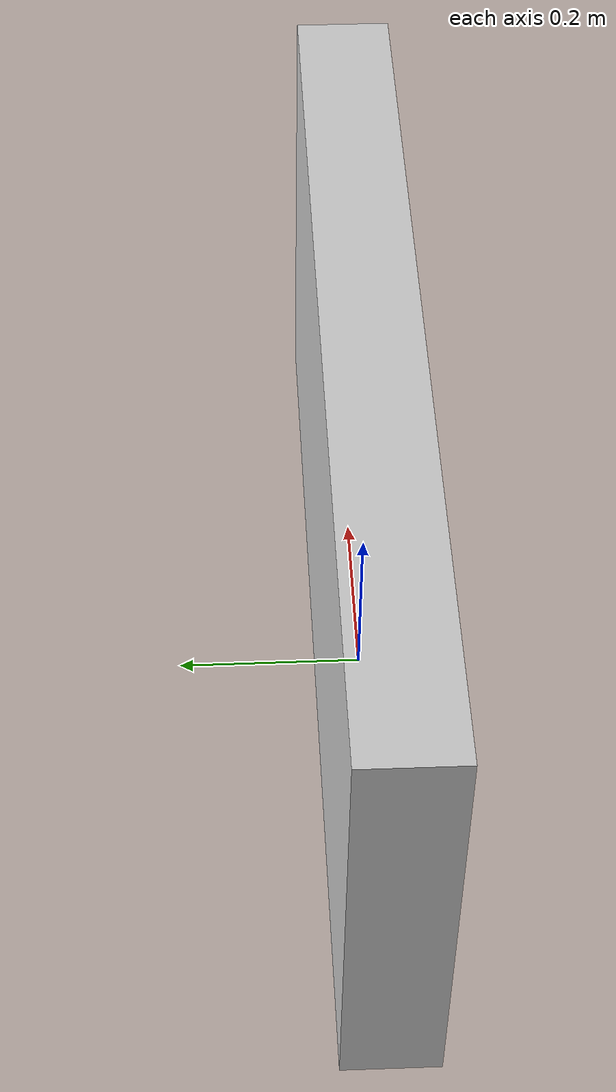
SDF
<?xml version="1.0" ?>
<sdf version="1.5">
  <model name="rk_box1">
    <static>true</static>
    <link name="link">
      <visual name="visual">
        <geometry>
          <mesh>
            <uri>model://rk_box1/meshes/rk_box1.dae</uri>
          </mesh>
        </geometry>
      </visual>

      <collision name="collision">
        <geometry>
          <box>
            <size>0.45 0.1 0.5</size>
          </box>
        </geometry>
      </collision>
    </link>
  </model>
</sdf>
